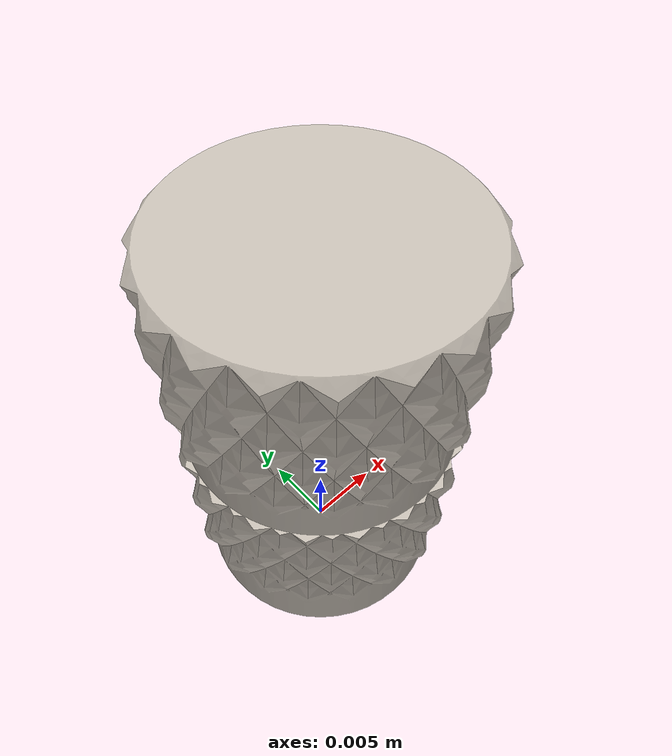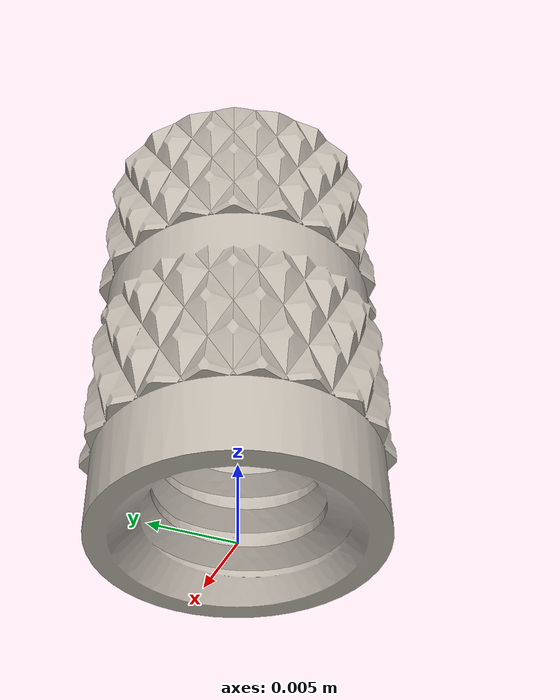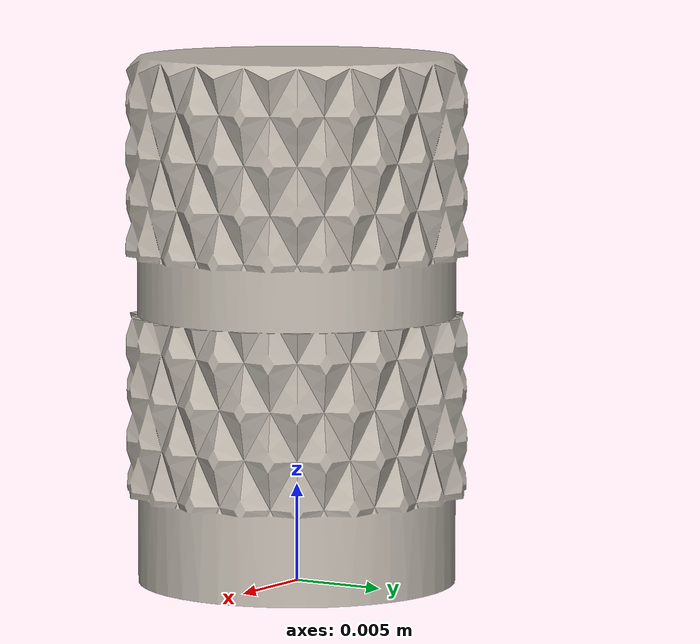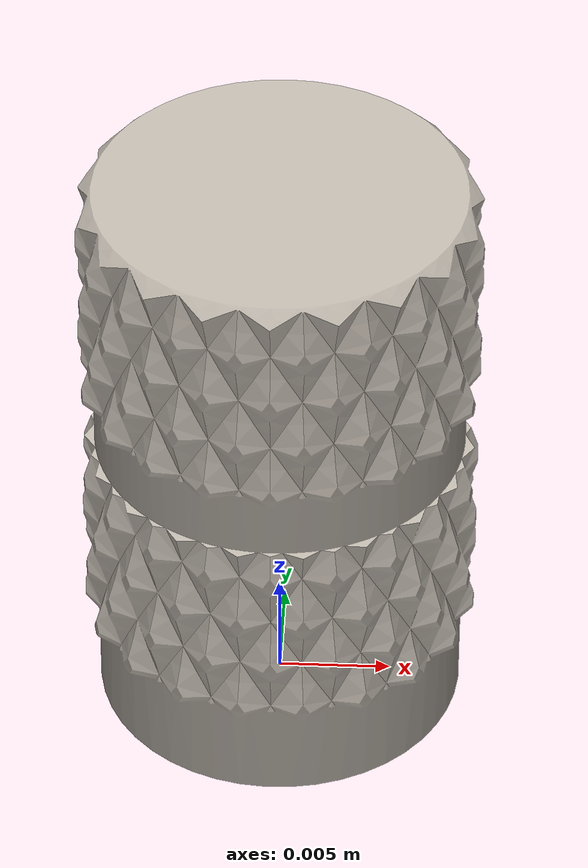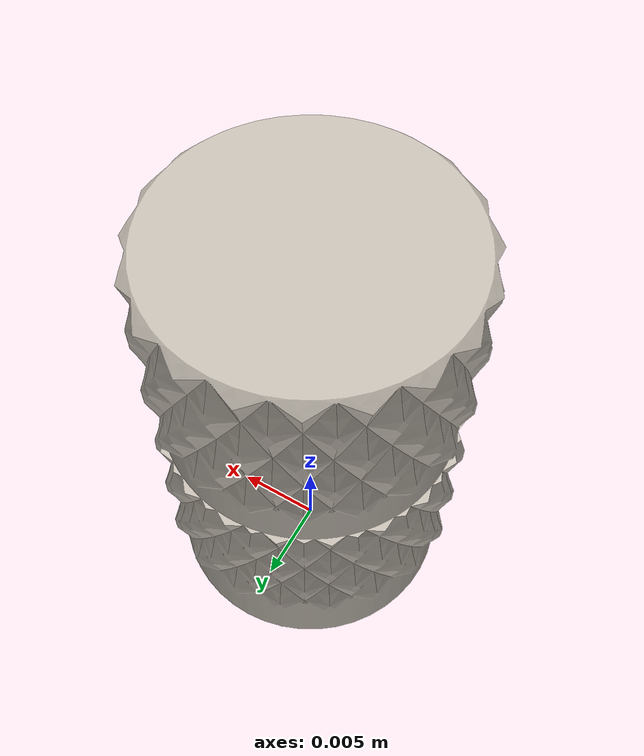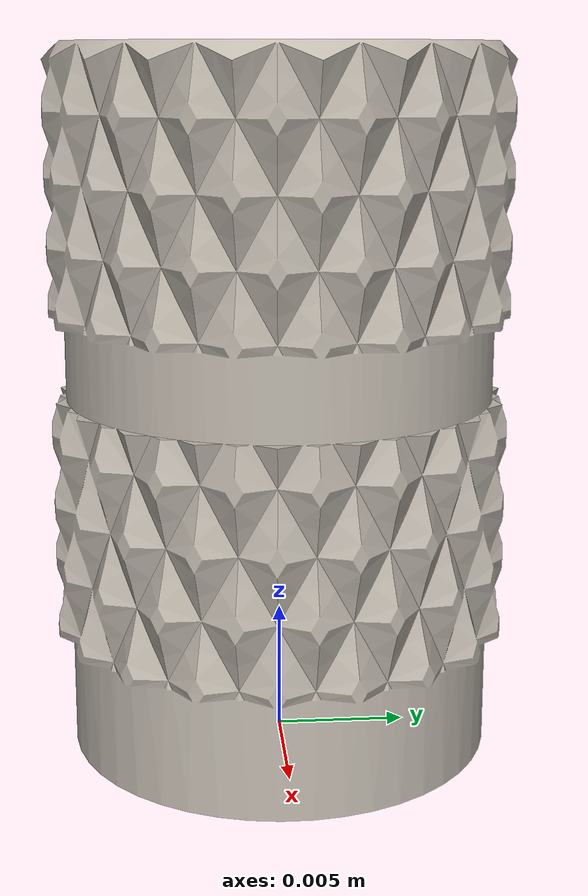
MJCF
<?xml version="1.0" ?>
<mujoco model="threaded_insert">
  <asset>
    <mesh file="../meshes/threaded_insert.stl" name="threaded_insert_mesh" scale="0.002 0.002 0.002"/>
    <texture file="../textures/threaded_insert.png" type="2d" name="tex-threaded_insert"/>
    <material name="threaded_insert" reflectance="0.7" texrepeat="15 15" texture="tex-threaded_insert" texuniform="true"/>
  </asset>
  <worldbody>
    <body>
      <body name="object">
        <geom pos="0 0 0" mesh="threaded_insert_mesh" type="mesh" solimp="0.998 0.998 0.001" solref="0.001 1" density="50" friction="0.95 0.3 0.1" material="threaded_insert" group="0" condim="4"/>
      </body>
      <site rgba="0 0 0 0" size="0.005" pos="0.0 0.0 0.004801072759984006" name="bottom_site"/>
      <site rgba="0 0 0 0" size="0.005" pos="0.0 0.0 0.02225880972897815" name="top_site"/>
      <site rgba="0 0 0 0" size="0.005" pos="0.00872886848449707 0.00873758840560913 0" name="horizontal_radius_site"/>
    </body>
  </worldbody>
</mujoco>
